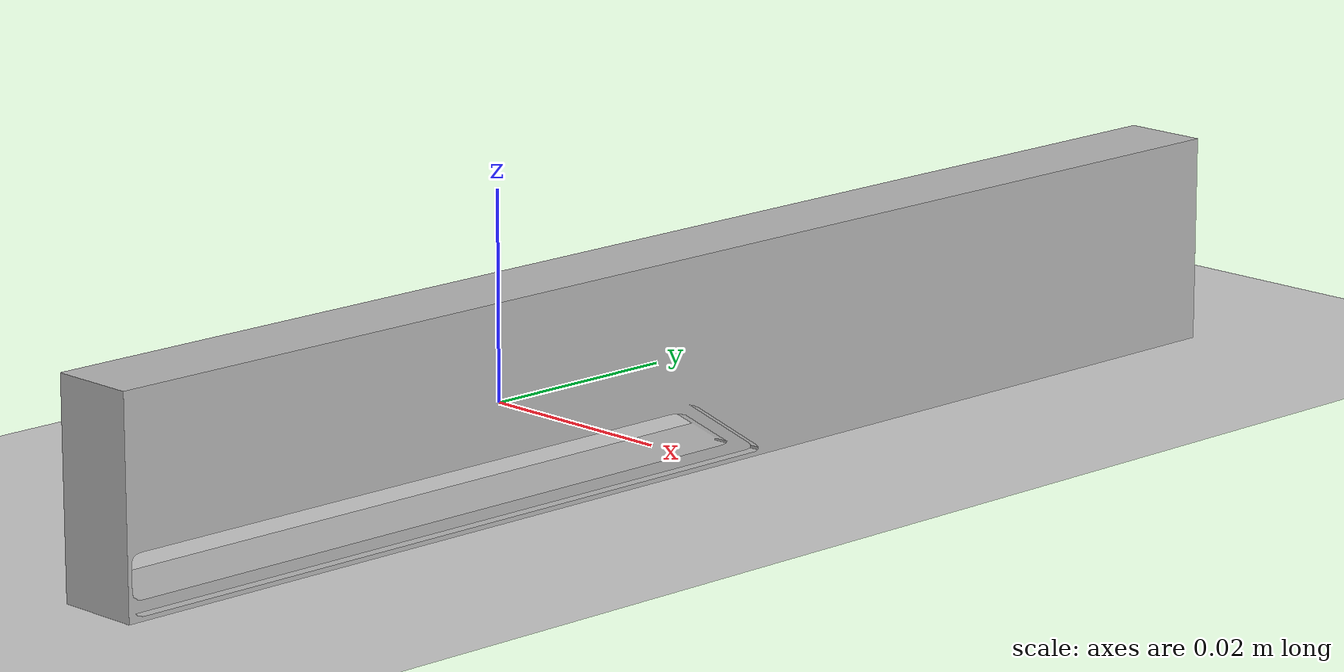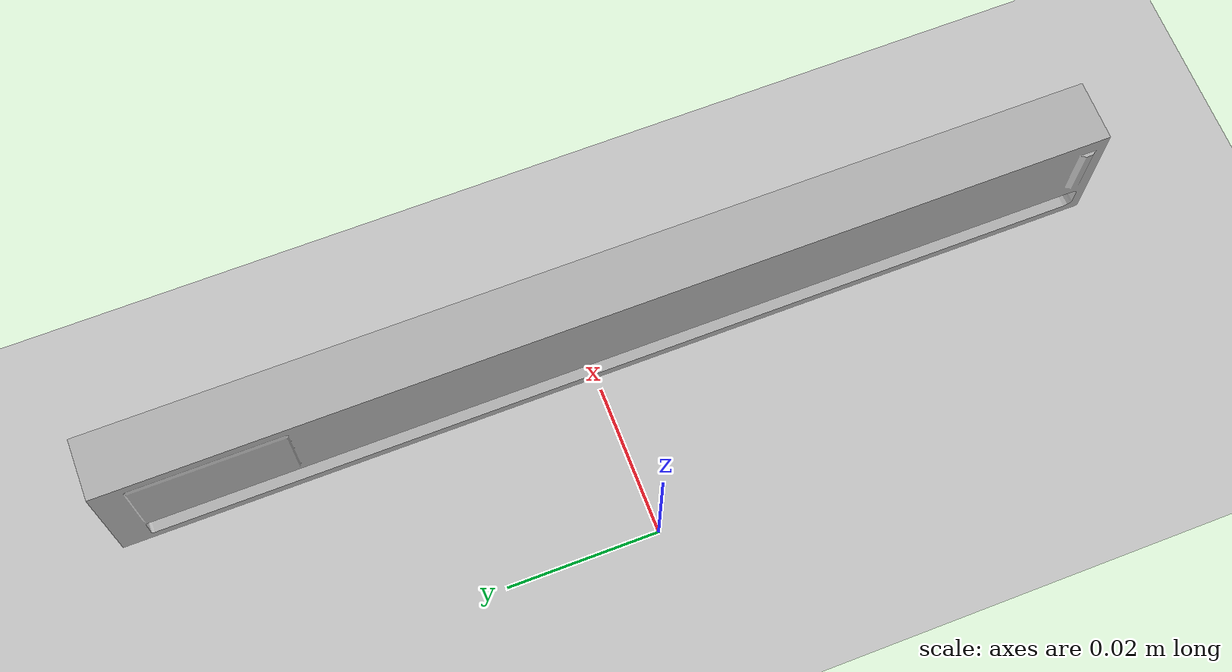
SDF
<sdf version="1.7">
 <world name="default">
  <light name="sun" type="directional">
   <pose>0 0 10 0 -0 0</pose>
   <diffuse>0.8 0.8 0.8 1</diffuse>
   <specular>0.2 0.2 0.2 1</specular>
   <attenuation>
    <range>1000</range>
    <constant>0.9</constant>
    <linear>0.01</linear>
    <quadratic>0.001</quadratic>
   </attenuation>
   <direction>-0.5 0.1 -0.9</direction>
   <spot><inner_angle>0</inner_angle><outer_angle>0</outer_angle><falloff>0</falloff></spot>
  </light>
  <model name="ground_plane">
   <static>1</static>
   <link name="link">
    <collision name="collision">
     <geometry><plane><normal>0 0 1</normal><size>100 100</size></plane></geometry>
     <surface>
      <contact><collide_bitmask>65535</collide_bitmask></contact>
      <friction><ode><mu>100</mu><mu2>50</mu2></ode></friction>
     </surface>
    </collision>
    <visual name="visual">
     <cast_shadows>0</cast_shadows>
     <geometry><plane><normal>0 0 1</normal><size>100 100</size></plane></geometry>
     <material>
      <script><uri>file://media/materials/scripts/gazebo.material</uri><name>Gazebo/Grey</name></script>
     </material>
    </visual>
   </link>
  </model>
  <gravity>0 0 -9.8</gravity>
  <magnetic_field>6e-06 2.3e-05 -4.2e-05</magnetic_field>
  <atmosphere type="adiabatic"/>
  <physics type="ode">
   <max_step_size>0.001</max_step_size>
   <real_time_factor>1</real_time_factor>
   <real_time_update_rate>1000</real_time_update_rate>
  </physics>
  <scene><ambient>0.4 0.4 0.4 1</ambient><background>0.7 0.7 0.7 1</background><shadows>1</shadows></scene>
  <spherical_coordinates>
   <surface_model>EARTH_WGS84</surface_model>
   <latitude_deg>0</latitude_deg>
   <longitude_deg>0</longitude_deg>
   <elevation>0</elevation>
   <heading_deg>0</heading_deg>
  </spherical_coordinates>
  <model name="realsense_custom">
   <link name="link">
    <inertial>
     <mass>0.2</mass>
     <inertia>
      <ixx>0.00014395</ixx>
      <ixy>0</ixy>
      <ixz>0</ixz>
      <iyy>3.84e-06</iyy>
      <iyz>0</iyz>
      <izz>0.00014136</izz>
     </inertia>
    </inertial>
    <sensor name="camera" type="depth">
     <pose>0.001 -0.045 0.003 0 -0 0</pose>
     <update_rate>60</update_rate>
     <camera>
      <horizontal_fov>0.976899</horizontal_fov>
      <image><width>480</width><height>360</height><format>R8G8B8</format></image>
      <clip><near>0.5</near><far>10</far></clip>
     </camera>
    </sensor>
    <visual name="visual">
     <geometry><mesh><uri>model://intel_realsense_r200/meshes/realsense_r200.dae</uri></mesh></geometry>
     <material><shader type="pixel"/></material>
    </visual>
    <collision name="collision">
     <geometry><box><size>0.008 0.13 0.02</size></box></geometry>
     <surface>
      <friction>
       <ode><mu>0.4</mu><mu2>0.4</mu2><fdir1>0 0 0</fdir1><slip1>0</slip1><slip2>0</slip2></ode>
       <torsional>
        <coefficient>1</coefficient>
        <patch_radius>0</patch_radius>
        <surface_radius>0</surface_radius>
        <use_patch_radius>1</use_patch_radius>
        <ode><slip>0</slip></ode>
       </torsional>
      </friction>
      <bounce><restitution_coefficient>0</restitution_coefficient><threshold>1e+06</threshold></bounce>
      <contact>
       <collide_without_contact>0</collide_without_contact>
       <collide_without_contact_bitmask>1</collide_without_contact_bitmask>
       <collide_bitmask>1</collide_bitmask>
       <ode>
        <soft_cfm>0</soft_cfm>
        <soft_erp>0.2</soft_erp>
        <kp>1e+13</kp>
        <kd>1</kd>
        <max_vel>0.1</max_vel>
        <min_depth>0.001</min_depth>
       </ode>
       <bullet>
        <split_impulse>1</split_impulse>
        <split_impulse_penetration_threshold>-0.01</split_impulse_penetration_threshold>
        <soft_cfm>0</soft_cfm>
        <soft_erp>0.2</soft_erp>
        <kp>1e+13</kp>
        <kd>1</kd>
       </bullet>
      </contact>
     </surface>
    </collision>
   </link>
   <static>0</static>
   <plugin name="realsense_cam" filename="libgazebo_ros_openni_kinect.so">
    <baseline>0.2</baseline>
    <alwaysOn>1</alwaysOn>
    <updateRate>0.0</updateRate>
    <cameraName>camera_ir</cameraName>
    <imageTopicName>/camera/color/image_raw</imageTopicName>
    <cameraInfoTopicName>/camera/color/camera_info</cameraInfoTopicName>
    <depthImageTopicName>/camera/depth/image_raw</depthImageTopicName>
    <depthImageCameraInfoTopicName>/camera/depth/camera_info</depthImageCameraInfoTopicName>
    <pointCloudTopicName>/camera/depth/points</pointCloudTopicName>
    <frameName>camera_link</frameName>
    <pointCloudCutoff>0.5</pointCloudCutoff>
    <pointCloudCutoffMax>3.0</pointCloudCutoffMax>
    <distortionK1>0</distortionK1>
    <distortionK2>0</distortionK2>
    <distortionK3>0</distortionK3>
    <distortionT1>0</distortionT1>
    <distortionT2>0</distortionT2>
    <CxPrime>0</CxPrime>
    <Cx>0</Cx>
    <Cy>0</Cy>
    <focalLength>0</focalLength>
    <hackBaseline>0</hackBaseline>
   </plugin>
   <pose>0.025742 -0.002604 0.009999 0 -1e-06 2.1e-05</pose>
  </model>
 </world>
</sdf>
